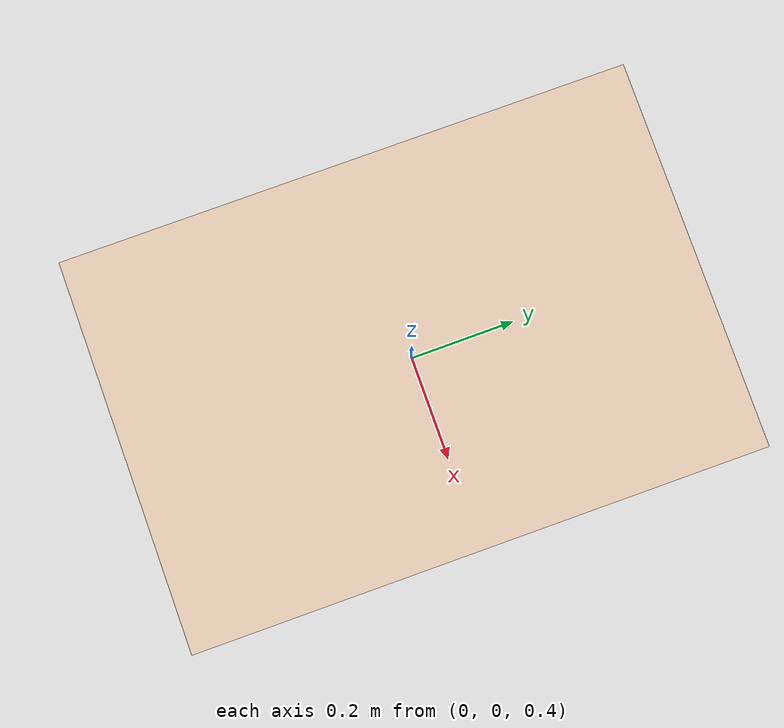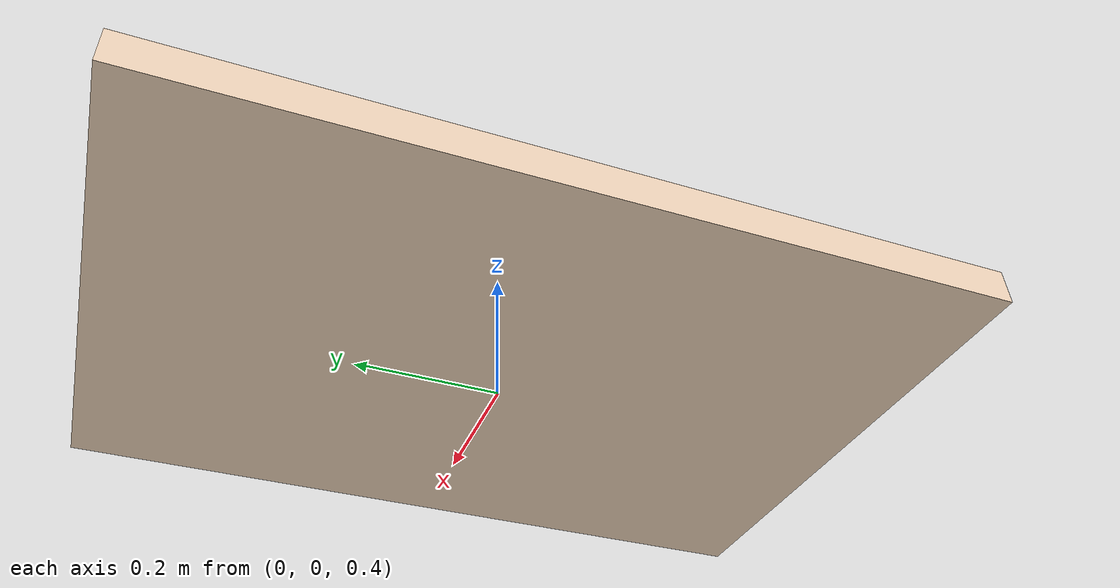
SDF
<?xml version="1.0"?>
<sdf version="1.7">
  <model name="table_top">
    <link name="table_top_link">
      <visual name="visual">
        <pose>0 0 0.445 0 0 0</pose>
        <geometry>
          <box>
            <size>0.75 1.1 0.05</size>
          </box>
        </geometry>
        <material>
         <diffuse>0.9 0.8 0.7 1.0</diffuse>
        </material>
      </visual>
      <collision name="collision">
        <pose>0 0 0.445  0 0 0</pose>
        <geometry>
          <box>
            <size>0.75 1.1 0.05</size>
          </box>
        </geometry>
        <surface>
          <friction>
            <ode>
              <mu>0.1</mu>
              <mu2>0.1</mu2>
            </ode>
          </friction>
        </surface>
      </collision>
    </link>
    <frame name="table_top_center">
      <pose relative_to="table_top_link">0 0 0.47 0 0 0</pose>
    </frame>
  </model>
</sdf>
